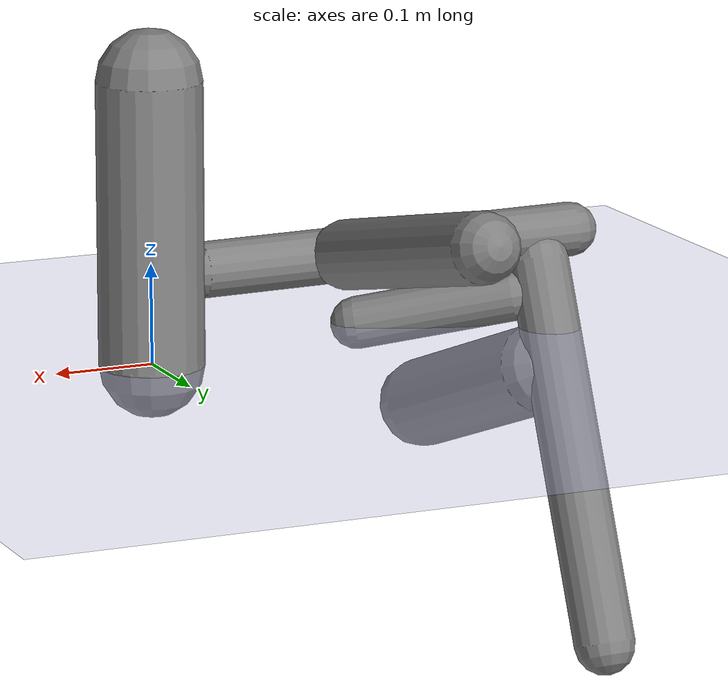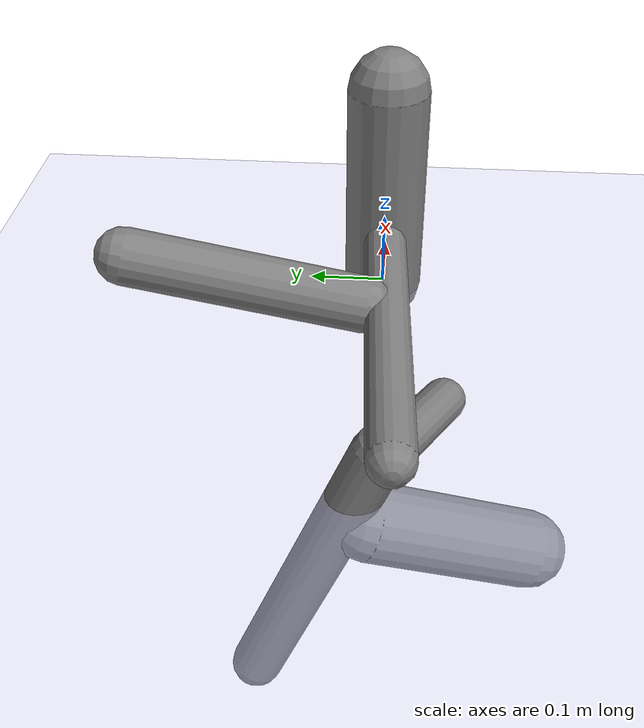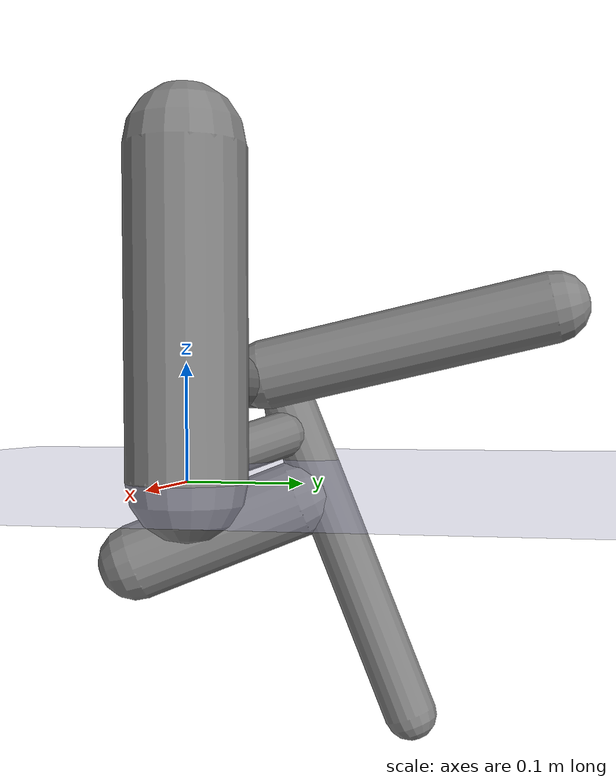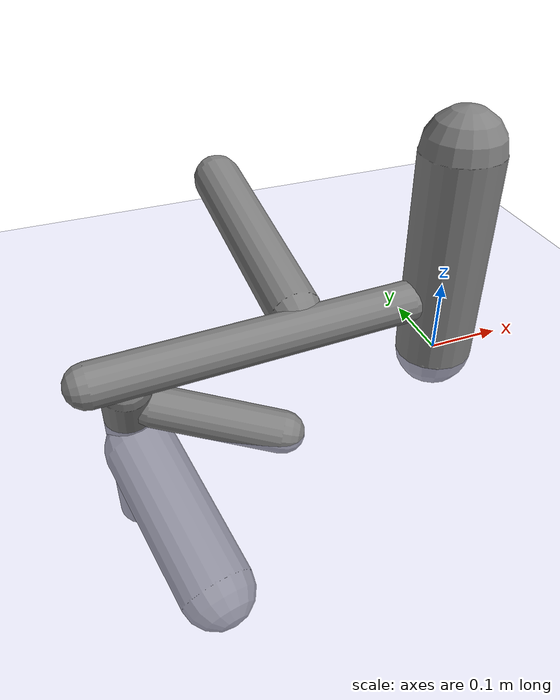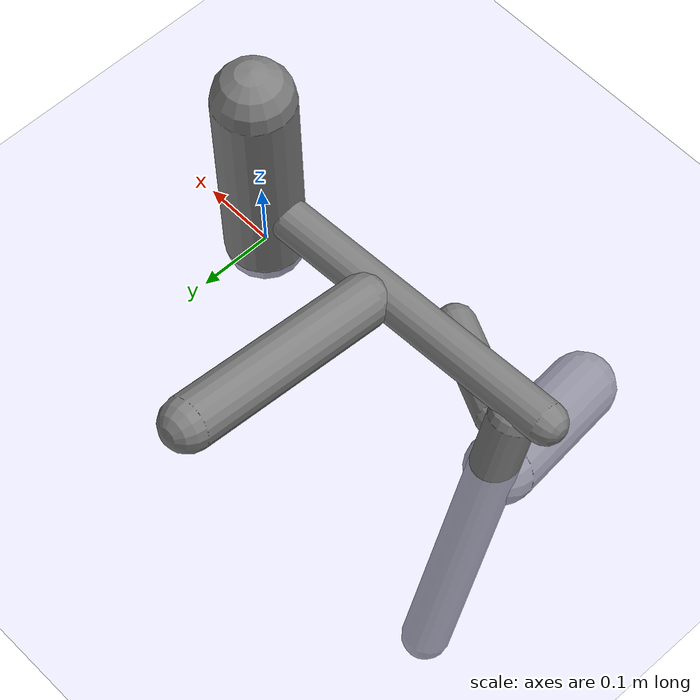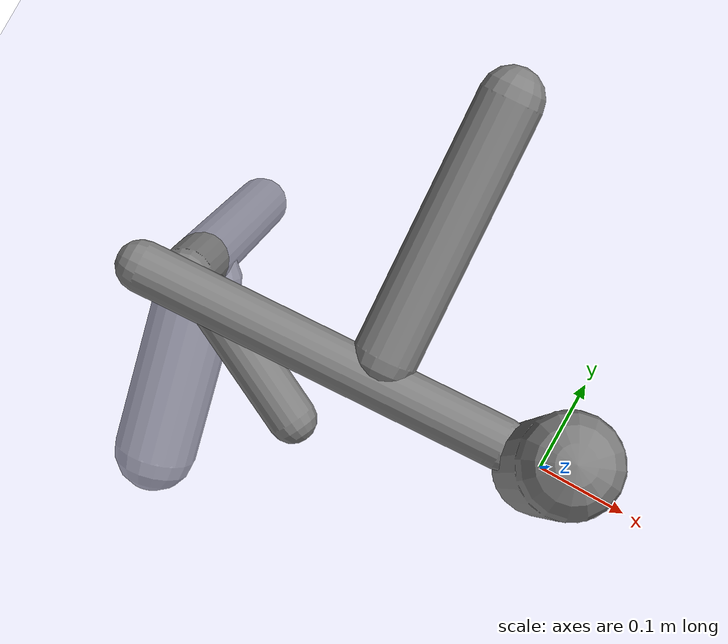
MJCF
<?xml version='1.0' encoding='UTF-8'?>
<mujoco model="robot_model">
  <worldbody>
    <light name="light" pos="0 -3 10" dir="0 0.5 -1" diffuse=".8 .8 .8" specular="0.1 0.1 0.1"/>
    <geom name="floor" type="plane" size="10.0 10.0 0.1" pos="0 0 0" rgba="0.8 0.8 1 1" contype="2" conaffinity="1"/>
    <body name="limb0" pos="0 0 0">
      <geom name="limb0_geom" type="capsule" fromto="0 0 0 0 0 0.2797215636428" size="0.052183597027905114" density="745.8119714770129" contype="1" conaffinity="2"/>
      <site type="sphere" size="0.01" name="limb0_site0" pos="-0.052116625058988474 -0.0026429512351917464 0.08839340873577531" quat="0.7071067811865476 0.035812953632730245 -0.7061992865700869 0.0"/>
      <freejoint name="limb0_root"/>
      <body name="limb1" pos="-0.052116625058988474 -0.0026429512351917464 0.08839340873577531" quat="0.7071067811865476 0.035812953632730245 -0.7061992865700869 0.0">
        <geom name="limb1_geom" type="capsule" fromto="0 0 0 0 0 0.4119779083954327" size="0.027784373909289378" density="1094.7449235337838" contype="1" conaffinity="2"/>
        <site type="sphere" size="0.01" name="limb1_site0" pos="-0.026306587246115593 0.008940632024287142 0.3707577856502461" quat="0.7071067811865476 -0.2275373039935 -0.6694974049922594 0.0"/>
        <site type="sphere" size="0.01" name="limb1_site1" pos="0.004726814848962095 0.02737934723317617 0.14662549990165907" quat="0.7071067811865476 -0.6967989329630775 0.12029649629775836 0.0"/>
        <body name="limb2" pos="-0.026306587246115593 0.008940632024287142 0.3707577856502461" quat="0.7071067811865476 -0.2275373039935 -0.6694974049922594 0.0">
          <geom name="limb2_geom" type="capsule" fromto="0 0 0 0 0 0.39228239834336115" size="0.031234842456126257" density="854.5538514341013" contype="1" conaffinity="2"/>
          <site type="sphere" size="0.01" name="limb2_site0" pos="-0.01446640470735543 -0.027682819908781547 0.10617060175419196" quat="0.7071067811865476 0.6266946826244069 -0.32749622100154663 0.0"/>
          <site type="sphere" size="0.01" name="limb2_site1" pos="-0.030515171451798145 -0.006666310413293918 0.029985682452816506" quat="0.7071067811865476 0.15091458538187963 -0.6908145828795272 0.0"/>
          <body name="limb3" pos="-0.01446640470735543 -0.027682819908781547 0.10617060175419196" quat="0.7071067811865476 0.6266946826244069 -0.32749622100154663 0.0">
            <geom name="limb3_geom" type="capsule" fromto="0 0 0 0 0 0.20587440072907823" size="0.04603065339053593" density="1089.820416514438" contype="1" conaffinity="2"/>
            <joint name="joint_limb2_limb3_0" type="hinge" axis="1 0 0" range="-76.8184141901732 76.8184141901732" damping="5.0"/>
          </body>
          <body name="limb4" pos="-0.030515171451798145 -0.006666310413293918 0.029985682452816506" quat="0.7071067811865476 0.15091458538187963 -0.6908145828795272 0.0">
            <geom name="limb4_geom" type="capsule" fromto="0 0 0 0 0 0.15992621835018483" size="0.02679953805877651" density="497.521777068245" contype="1" conaffinity="2"/>
            <joint name="joint_limb2_limb4_0" type="hinge" axis="0 0 1" range="-36.57311519522722 36.57311519522722" damping="5.0"/>
          </body>
          <joint name="joint_limb1_limb2_0" type="hinge" axis="1 0 0" range="-60.6612845033848 60.6612845033848" damping="5.0"/>
        </body>
        <body name="limb5" pos="0.004726814848962095 0.02737934723317617 0.14662549990165907" quat="0.7071067811865476 -0.6967989329630775 0.12029649629775836 0.0">
          <geom name="limb5_geom" type="capsule" fromto="0 0 0 0 0 0.28928158855542757" size="0.03498427886939431" density="573.2226405414596" contype="1" conaffinity="2"/>
          <joint name="joint_limb1_limb5_0" type="hinge" axis="1 0 0" range="-48.18281063347258 48.18281063347258" damping="5.0"/>
        </body>
        <joint name="joint_limb0_limb1_0" type="hinge" axis="0 1 0" range="-79.43746025127588 79.43746025127588" damping="5.0"/>
      </body>
    </body>
  </worldbody>
  <actuator>
    <position name="position_actuator_joint_limb0_limb1_0" joint="joint_limb0_limb1_0" gear="1.5835672608966855" inheritrange="1" forcerange="-5.960783523172352 5.960783523172352" forcelimited="true" kp="100.0"/>
    <position name="position_actuator_joint_limb1_limb2_0" joint="joint_limb1_limb2_0" gear="0.9597608262960533" inheritrange="1" forcerange="-5.682722942176081 5.682722942176081" forcelimited="true" kp="100.0"/>
    <position name="position_actuator_joint_limb2_limb3_0" joint="joint_limb2_limb3_0" gear="1.4426881968183625" inheritrange="1" forcerange="-9.693587687008968 9.693587687008968" forcelimited="true" kp="100.0"/>
    <position name="position_actuator_joint_limb2_limb4_0" joint="joint_limb2_limb4_0" gear="1.7107518951402347" inheritrange="1" forcerange="-1.0982122289866472 1.0982122289866472" forcelimited="true" kp="100.0"/>
    <position name="position_actuator_joint_limb1_limb5_0" joint="joint_limb1_limb5_0" gear="1.8903065910928873" inheritrange="1" forcerange="-3.701982454396224 3.701982454396224" forcelimited="true" kp="100.0"/>
  </actuator>
  <contact>
    <pair geom1="limb0_geom" geom2="limb1_geom"/>
    <pair geom1="limb1_geom" geom2="limb2_geom"/>
    <pair geom1="limb2_geom" geom2="limb3_geom"/>
    <pair geom1="limb2_geom" geom2="limb4_geom"/>
    <pair geom1="limb1_geom" geom2="limb5_geom"/>
  </contact>
</mujoco>
